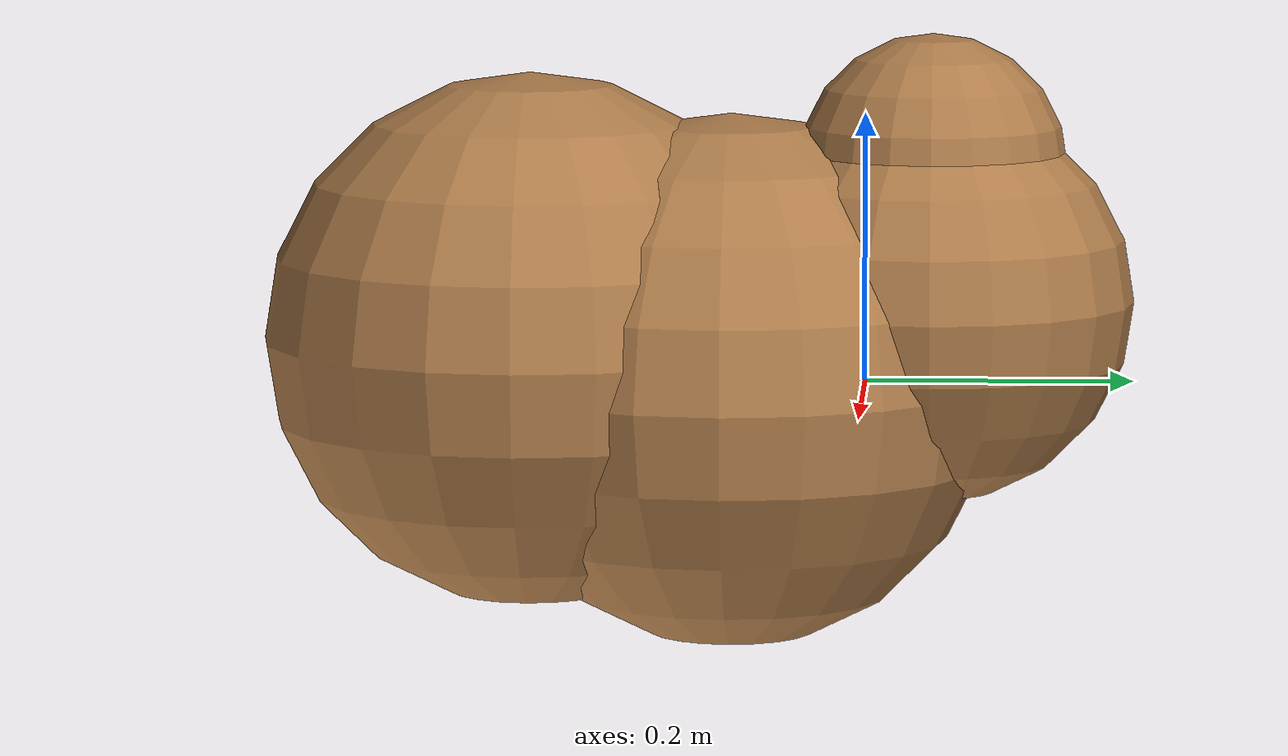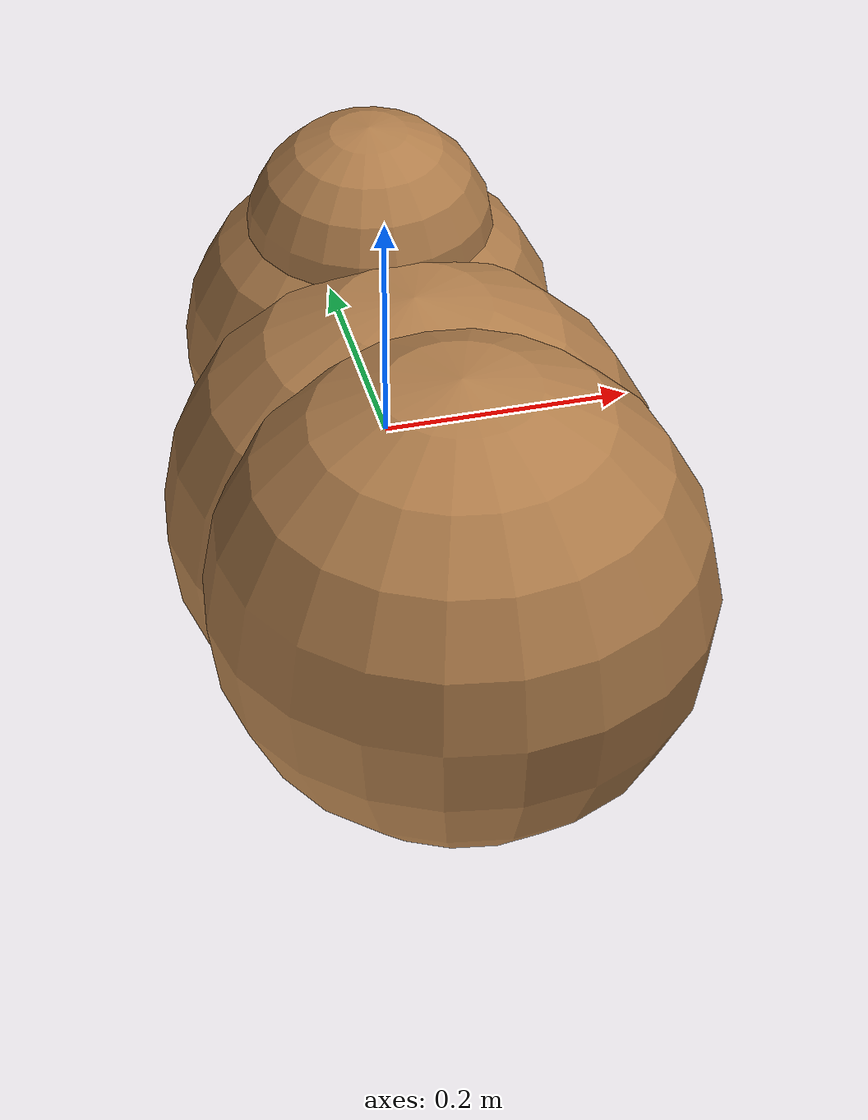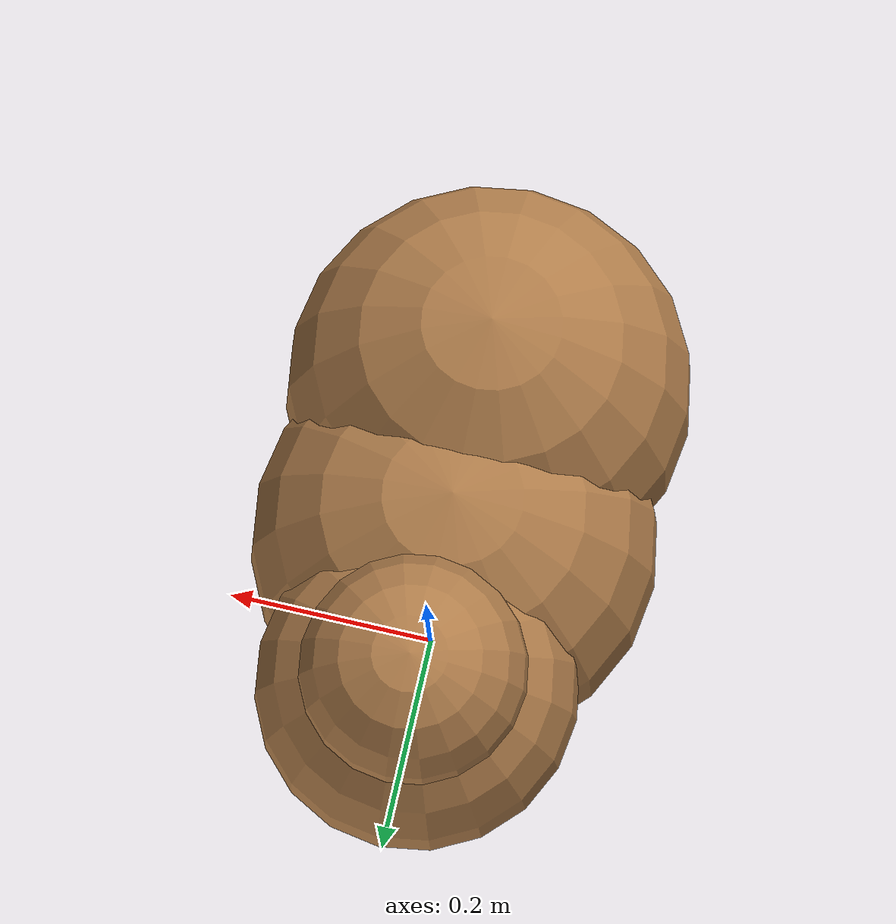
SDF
<?xml version='1.0'?>
<sdf version='1.4'>

  <model name ="support_total">
   <static>true</static>
   <pose>0.0 0.0 0.0 0 0 0</pose>

<link name ='sphere1'>
  <pose>0 0.05 0.06 0 0 0</pose>
  <collision name ='collision'>
   <geometry><sphere><radius>0.15</radius></sphere></geometry>
 </collision>
 <visual name ='visual'>   <transparency>0.0</transparency>
   <geometry><sphere><radius>0.15</radius></sphere></geometry>
   <material>
    <script>
     <uri>file://media/materials/scripts/gazebo.material</uri>
     <name>Gazebo/Wood</name>
   </script>
 </material>
</visual>
</link>

<link name ='sphere2'>
  <pose>0 -0.1 0 0 0 0</pose>
  <collision name ='collision'>
   <geometry><sphere><radius>0.2</radius></sphere></geometry>
 </collision>
 <visual name ='visual'><transparency>0.0</transparency>
   <geometry><sphere><radius>0.2</radius></sphere></geometry>
   <material>
    <script>
     <uri>file://media/materials/scripts/gazebo.material</uri>
     <name>Gazebo/Wood</name>
   </script>
 </material>
</visual>
</link>

<link name ='sphere3'>
  <pose>0 -0.25 0.03 0 0 0</pose>
  <collision name ='collision'>
   <geometry><sphere><radius>0.20</radius></sphere></geometry>
 </collision>
 <visual name ='visual'><transparency>0.0</transparency>
   <geometry><sphere><radius>0.20</radius></sphere></geometry>
   <material>
    <script>
     <uri>file://media/materials/scripts/gazebo.material</uri>
     <name>Gazebo/Wood</name>
   </script>
 </material>
</visual>
</link>

<link name ='sphere4'>
  <pose>0 0.05 0.16 0 0 0</pose>
  <collision name ='collision'>
   <geometry><sphere><radius>0.10</radius></sphere></geometry>
 </collision>
 <visual name ='visual'><transparency>0.0</transparency>
   <geometry><sphere><radius>0.10</radius></sphere></geometry>
   <material>
    <script>
     <uri>file://media/materials/scripts/gazebo.material</uri>
     <name>Gazebo/Wood</name>
   </script>
 </material>
</visual>
</link>

</model>
</sdf>
